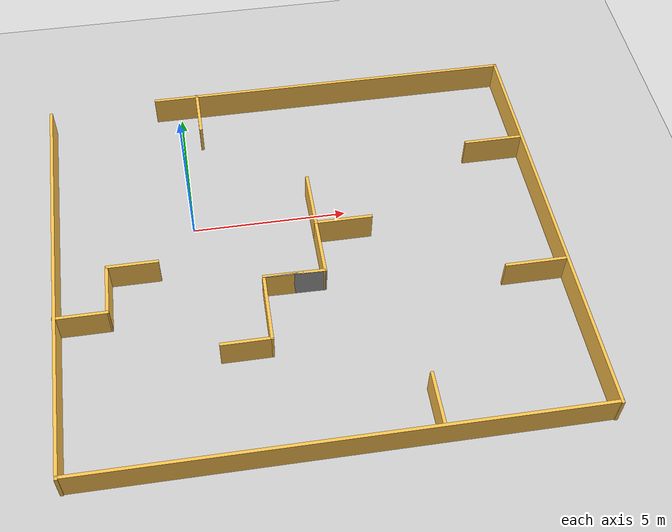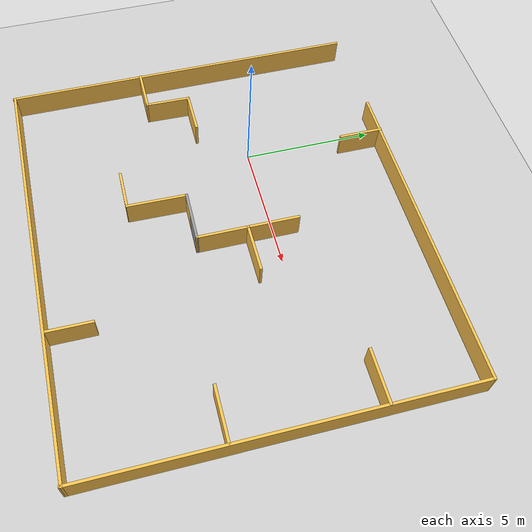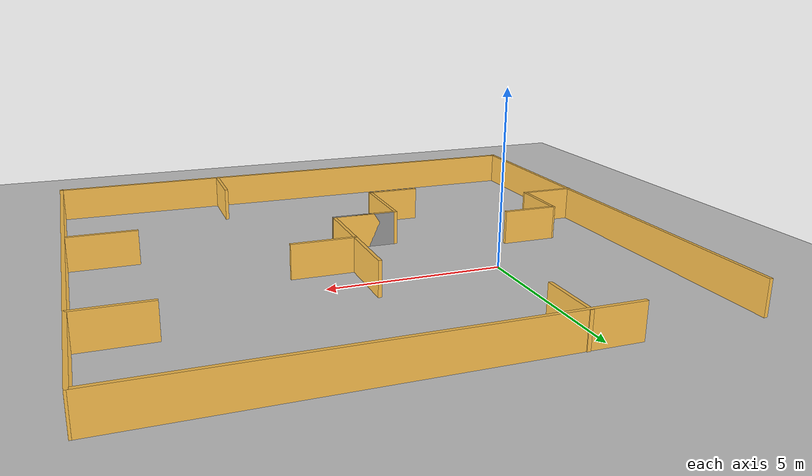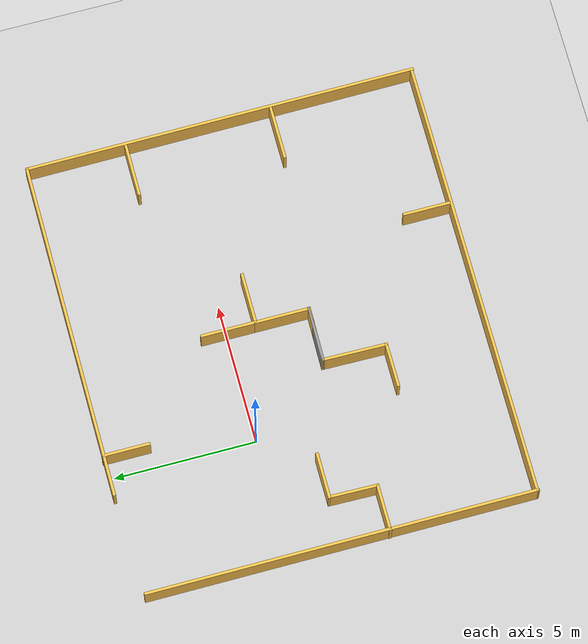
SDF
<sdf version="1.4">
  <world name="default">

    <scene>
      <ambient>0.4 0.4 0.4 1</ambient>
      <background>0.7 0.7 0.7 1</background>
      <shadows>true</shadows>
    </scene>

    <!-- A global light source -->
    <include>
      <uri>model://sun</uri>
    </include>

    <!-- A ground plane -->
    <include>
      <uri>model://ground_plane</uri>
    </include>

    <!-- Final maze -->
    <include>
      <uri>model://final_maze</uri>
         <pose> 3.5 -1.75 0 0 0 0</pose>
    </include>

    <physics type="ode">
      <real_time_update_rate>1000.0</real_time_update_rate>
      <max_step_size>0.001</max_step_size>
      <real_time_factor>1</real_time_factor>
      <ode>
        <solver>
          <type>quick</type>
          <iters>150</iters>
          <precon_iters>0</precon_iters>
          <sor>1.400000</sor>
          <use_dynamic_moi_rescaling>1</use_dynamic_moi_rescaling>
        </solver>
        <constraints>
          <cfm>0.00001</cfm>
          <erp>0.2</erp>
          <contact_max_correcting_vel>2000.000000</contact_max_correcting_vel>
          <contact_surface_layer>0.01000</contact_surface_layer>
        </constraints>
      </ode>
    </physics>
  </world>

</sdf>

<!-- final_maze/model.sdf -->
<sdf version='1.6'>
  <model name='final_maze'>
    <pose frame=''>1.10341 -3.40415 0 0 -0 0</pose>
    <link name='Wall_19'>
      <collision name='Wall_19_Collision'>
        <geometry>
          <box>
            <size>13.829 0.1 1</size>
          </box>
        </geometry>
        <pose frame=''>0 0 0.5 0 -0 0</pose>
      </collision>
      <visual name='Wall_19_Visual'>
        <pose frame=''>0 0 0.5 0 -0 0</pose>
        <geometry>
          <box>
            <size>13.829 0.1 1</size>
          </box>
        </geometry>
        <material>
          <script>
            <uri>file://media/materials/scripts/gazebo.material</uri>
            <name>Gazebo/Grey</name>
          </script>
          <ambient>1 0.764706 0.305882 1</ambient>
        </material>
        <meta>
          <layer>0</layer>
        </meta>
      </visual>
      <pose frame=''>-7.90211 -0.086298 0 0 -0 -1.56696</pose>
    </link>
    <link name='Wall_20'>
      <collision name='Wall_20_Collision'>
        <geometry>
          <box>
            <size>15.904 0.1 1</size>
          </box>
        </geometry>
        <pose frame=''>0 0 0.5 0 -0 0</pose>
      </collision>
      <visual name='Wall_20_Visual'>
        <pose frame=''>0 0 0.5 0 -0 0</pose>
        <geometry>
          <box>
            <size>15.904 0.1 1</size>
          </box>
        </geometry>
        <material>
          <script>
            <uri>file://media/materials/scripts/gazebo.material</uri>
            <name>Gazebo/Grey</name>
          </script>
          <ambient>1 0.764706 0.305882 1</ambient>
        </material>
        <meta>
          <layer>0</layer>
        </meta>
      </visual>
      <pose frame=''>0.026194 -6.92445 0 0 -0 0</pose>
    </link>
    <link name='Wall_21'>
      <collision name='Wall_21_Collision'>
        <geometry>
          <box>
            <size>13.9804 0.1 1</size>
          </box>
        </geometry>
        <pose frame=''>0 0 0.5 0 -0 0</pose>
      </collision>
      <visual name='Wall_21_Visual'>
        <pose frame=''>0 0 0.5 0 -0 0</pose>
        <geometry>
          <box>
            <size>13.9804 0.1 1</size>
          </box>
        </geometry>
        <material>
          <script>
            <uri>file://media/materials/scripts/gazebo.material</uri>
            <name>Gazebo/Grey</name>
          </script>
          <ambient>1 0.764706 0.305882 1</ambient>
        </material>
        <meta>
          <layer>0</layer>
        </meta>
      </visual>
      <pose frame=''>7.87189 -0.010798 0 0 -0 1.57891</pose>
    </link>
    <link name='Wall_22'>
      <collision name='Wall_22_Collision'>
        <geometry>
          <box>
            <size>12.2197 0.1 1</size>
          </box>
        </geometry>
        <pose frame=''>0 0 0.5 0 -0 0</pose>
      </collision>
      <visual name='Wall_22_Visual'>
        <pose frame=''>0 0 0.5 0 -0 0</pose>
        <geometry>
          <box>
            <size>12.2197 0.1 1</size>
          </box>
        </geometry>
        <material>
          <script>
            <uri>file://media/materials/scripts/gazebo.material</uri>
            <name>Gazebo/Grey</name>
          </script>
          <ambient>1 0.764706 0.305882 1</ambient>
        </material>
        <meta>
          <layer>0</layer>
        </meta>
      </visual>
      <pose frame=''>1.75559 6.92915 0 0 -0 3.14159</pose>
    </link>
    <link name='Wall_25'>
      <collision name='Wall_25_Collision'>
        <geometry>
          <box>
            <size>1.70066 0.1 1</size>
          </box>
        </geometry>
        <pose frame=''>0 0 0.5 0 -0 0</pose>
      </collision>
      <visual name='Wall_25_Visual'>
        <pose frame=''>0 0 0.5 0 -0 0</pose>
        <geometry>
          <box>
            <size>1.70066 0.1 1</size>
          </box>
        </geometry>
        <material>
          <script>
            <uri>file://media/materials/scripts/gazebo.material</uri>
            <name>Gazebo/Grey</name>
          </script>
          <ambient>1 0.764706 0.305882 1</ambient>
        </material>
        <meta>
          <layer>0</layer>
        </meta>
      </visual>
      <pose frame=''>-7.11241 -1.75085 0 0 -0 0</pose>
    </link>
    <link name='Wall_26'>
      <collision name='Wall_26_Collision'>
        <geometry>
          <box>
            <size>1.78129 0.1 1</size>
          </box>
        </geometry>
        <pose frame=''>0 0 0.5 0 -0 0</pose>
      </collision>
      <visual name='Wall_26_Visual'>
        <pose frame=''>0 0 0.5 0 -0 0</pose>
        <geometry>
          <box>
            <size>1.78129 0.1 1</size>
          </box>
        </geometry>
        <material>
          <script>
            <uri>file://media/materials/scripts/gazebo.material</uri>
            <name>Gazebo/Grey</name>
          </script>
          <ambient>1 0.764706 0.305882 1</ambient>
        </material>
        <meta>
          <layer>0</layer>
        </meta>
      </visual>
      <pose frame=''>-6.29691 -0.910347 0 0 -0 1.55236</pose>
    </link>
    <link name='Wall_27'>
      <collision name='Wall_27_Collision'>
        <geometry>
          <box>
            <size>1.65868 0.1 1</size>
          </box>
        </geometry>
        <pose frame=''>0 0 0.5 0 -0 0</pose>
      </collision>
      <visual name='Wall_27_Visual'>
        <pose frame=''>0 0 0.5 0 -0 0</pose>
        <geometry>
          <box>
            <size>1.65868 0.1 1</size>
          </box>
        </geometry>
        <material>
          <script>
            <uri>file://media/materials/scripts/gazebo.material</uri>
            <name>Gazebo/Grey</name>
          </script>
          <ambient>1 0.764706 0.305882 1</ambient>
        </material>
        <meta>
          <layer>0</layer>
        </meta>
      </visual>
      <pose frame=''>-5.50241 -0.069847 0 0 -0 0</pose>
    </link>
    <link name='Wall_29'>
      <collision name='Wall_29_Collision'>
        <geometry>
          <box>
            <size>2.34177 0.1 1</size>
          </box>
        </geometry>
        <pose frame=''>0 0 0.5 0 -0 0</pose>
      </collision>
      <visual name='Wall_29_Visual'>
        <pose frame=''>0 0 0.5 0 -0 0</pose>
        <geometry>
          <box>
            <size>2.34177 0.1 1</size>
          </box>
        </geometry>
        <material>
          <script>
            <uri>file://media/materials/scripts/gazebo.material</uri>
            <name>Gazebo/Grey</name>
          </script>
          <ambient>1 0.764706 0.305882 1</ambient>
        </material>
        <meta>
          <layer>0</layer>
        </meta>
      </visual>
      <pose frame=''>-1.54641 -2.26035 0 0 -0 -1.58418</pose>
    </link>
    <link name='Wall_30'>
      <collision name='Wall_30_Collision'>
        <geometry>
          <box>
            <size>1.60823 0.1 1</size>
          </box>
        </geometry>
        <pose frame=''>0 0 0.5 0 -0 0</pose>
      </collision>
      <visual name='Wall_30_Visual'>
        <pose frame=''>0 0 0.5 0 -0 0</pose>
        <geometry>
          <box>
            <size>1.60823 0.1 1</size>
          </box>
        </geometry>
        <material>
          <script>
            <uri>file://media/materials/scripts/gazebo.material</uri>
            <name>Gazebo/Grey</name>
          </script>
          <ambient>1 0.764706 0.305882 1</ambient>
        </material>
        <meta>
          <layer>0</layer>
        </meta>
      </visual>
      <pose frame=''>-2.31591 -3.38085 0 0 -0 3.14159</pose>
    </link>
    <link name='Wall_33'>
      <collision name='Wall_33_Collision'>
        <geometry>
          <box>
            <size>2.00025 0.1 1</size>
          </box>
        </geometry>
        <pose frame=''>0 0 0.5 0 -0 0</pose>
      </collision>
      <visual name='Wall_33_Visual'>
        <pose frame=''>0 0 0.5 0 -0 0</pose>
        <geometry>
          <box>
            <size>2.00025 0.1 1</size>
          </box>
        </geometry>
        <material>
          <script>
            <uri>file://media/materials/scripts/gazebo.material</uri>
            <name>Gazebo/Grey</name>
          </script>
          <ambient>1 1 1 1</ambient>
        </material>
        <meta>
          <layer>0</layer>
        </meta>
      </visual>
      <pose frame=''>-0.581407 -1.15485 0 0 -0 3.1258</pose>
    </link>
    <link name='Wall_34'>
      <collision name='Wall_34_Collision'>
        <geometry>
          <box>
            <size>2 0.1 1</size>
          </box>
        </geometry>
        <pose frame=''>0 0 0.5 0 -0 0</pose>
      </collision>
      <visual name='Wall_34_Visual'>
        <pose frame=''>0 0 0.5 0 -0 0</pose>
        <geometry>
          <box>
            <size>2 0.1 1</size>
          </box>
        </geometry>
        <material>
          <script>
            <uri>file://media/materials/scripts/gazebo.material</uri>
            <name>Gazebo/Grey</name>
          </script>
          <ambient>1 0.764706 0.305882 1</ambient>
        </material>
        <meta>
          <layer>0</layer>
        </meta>
      </visual>
      <pose frame=''>-0.581407 -1.15485 0 0 -0 -0.015788</pose>
    </link>
    <link name='Wall_35'>
      <collision name='Wall_35_Collision'>
        <geometry>
          <box>
            <size>2 0.1 1</size>
          </box>
        </geometry>
        <pose frame=''>0 0 0.5 0 -0 0</pose>
      </collision>
      <visual name='Wall_35_Visual'>
        <pose frame=''>0 0 0.5 0 -0 0</pose>
        <geometry>
          <box>
            <size>2 0.1 1</size>
          </box>
        </geometry>
        <material>
          <script>
            <uri>file://media/materials/scripts/gazebo.material</uri>
            <name>Gazebo/Grey</name>
          </script>
          <ambient>1 0.764706 0.305882 1</ambient>
        </material>
        <meta>
          <layer>0</layer>
        </meta>
      </visual>
      <pose frame=''>0.368593 -0.219847 0 0 -0 1.5708</pose>
    </link>
    <link name='Wall_36'>
      <collision name='Wall_36_Collision'>
        <geometry>
          <box>
            <size>1.87236 0.1 1</size>
          </box>
        </geometry>
        <pose frame=''>0 0 0.5 0 -0 0</pose>
      </collision>
      <visual name='Wall_36_Visual'>
        <pose frame=''>0 0 0.5 0 -0 0</pose>
        <geometry>
          <box>
            <size>1.87236 0.1 1</size>
          </box>
        </geometry>
        <material>
          <script>
            <uri>file://media/materials/scripts/gazebo.material</uri>
            <name>Gazebo/Grey</name>
          </script>
          <ambient>1 0.764706 0.305882 1</ambient>
        </material>
        <meta>
          <layer>0</layer>
        </meta>
      </visual>
      <pose frame=''>1.25509 0.730153 0 0 -0 0</pose>
    </link>
    <link name='Wall_38'>
      <collision name='Wall_38_Collision'>
        <geometry>
          <box>
            <size>2 0.1 1</size>
          </box>
        </geometry>
        <pose frame=''>0 0 0.5 0 -0 0</pose>
      </collision>
      <visual name='Wall_38_Visual'>
        <pose frame=''>0 0 0.5 0 -0 0</pose>
        <geometry>
          <box>
            <size>2 0.1 1</size>
          </box>
        </geometry>
        <material>
          <script>
            <uri>file://media/materials/scripts/gazebo.material</uri>
            <name>Gazebo/Grey</name>
          </script>
          <ambient>1 0.764706 0.305882 1</ambient>
        </material>
        <meta>
          <layer>0</layer>
        </meta>
      </visual>
      <pose frame=''>0.368593 1.68015 0 0 -0 1.5708</pose>
    </link>
    <link name='Wall_40'>
      <collision name='Wall_40_Collision'>
        <geometry>
          <box>
            <size>2 0.1 1</size>
          </box>
        </geometry>
        <pose frame=''>0 0 0.5 0 -0 0</pose>
      </collision>
      <visual name='Wall_40_Visual'>
        <pose frame=''>0 0 0.5 0 -0 0</pose>
        <geometry>
          <box>
            <size>2 0.1 1</size>
          </box>
        </geometry>
        <material>
          <script>
            <uri>file://media/materials/scripts/gazebo.material</uri>
            <name>Gazebo/Grey</name>
          </script>
          <ambient>1 0.764706 0.305882 1</ambient>
        </material>
        <meta>
          <layer>0</layer>
        </meta>
      </visual>
      <pose frame=''>6.87859 3.40715 0 0 -0 0</pose>
    </link>
    <link name='Wall_44'>
      <collision name='Wall_44_Collision'>
        <geometry>
          <box>
            <size>2 0.1 1</size>
          </box>
        </geometry>
        <pose frame=''>0 0 0.5 0 -0 0</pose>
      </collision>
      <visual name='Wall_44_Visual'>
        <pose frame=''>0 0 0.5 0 -0 0</pose>
        <geometry>
          <box>
            <size>2 0.1 1</size>
          </box>
        </geometry>
        <material>
          <script>
            <uri>file://media/materials/scripts/gazebo.material</uri>
            <name>Gazebo/Grey</name>
          </script>
          <ambient>1 0.764706 0.305882 1</ambient>
        </material>
        <meta>
          <layer>0</layer>
        </meta>
      </visual>
      <pose frame=''>6.89559 -1.80885 0 0 -0 3.14159</pose>
    </link>
    <link name='Wall_46'>
      <collision name='Wall_46_Collision'>
        <geometry>
          <box>
            <size>1.7 0.1 1</size>
          </box>
        </geometry>
        <pose frame=''>0 0 0.5 0 -0 0</pose>
      </collision>
      <visual name='Wall_46_Visual'>
        <pose frame=''>0 0 0.5 0 -0 0</pose>
        <geometry>
          <box>
            <size>1.7 0.1 1</size>
          </box>
        </geometry>
        <material>
          <script>
            <uri>file://media/materials/scripts/gazebo.material</uri>
            <name>Gazebo/Grey</name>
          </script>
          <ambient>1 0.764706 0.305882 1</ambient>
        </material>
        <meta>
          <layer>0</layer>
        </meta>
      </visual>
      <pose frame=''>2.81959 -6.04285 0 0 -0 -1.5708</pose>
    </link>
    <link name='Wall_50'>
      <collision name='Wall_50_Collision'>
        <geometry>
          <box>
            <size>1.7 0.1 1</size>
          </box>
        </geometry>
        <pose frame=''>0 0 0.5 0 -0 0</pose>
      </collision>
      <visual name='Wall_50_Visual'>
        <pose frame=''>0 0 0.5 0 -0 0</pose>
        <geometry>
          <box>
            <size>1.7 0.1 1</size>
          </box>
        </geometry>
        <material>
          <script>
            <uri>file://media/materials/scripts/gazebo.material</uri>
            <name>Gazebo/Grey</name>
          </script>
          <ambient>1 0.764706 0.305882 1</ambient>
        </material>
        <meta>
          <layer>0</layer>
        </meta>
      </visual>
      <pose frame=''>-2.88341 6.15115 0 0 -0 -1.5708</pose>
    </link>
    <static>1</static>
  </model>
</sdf>
